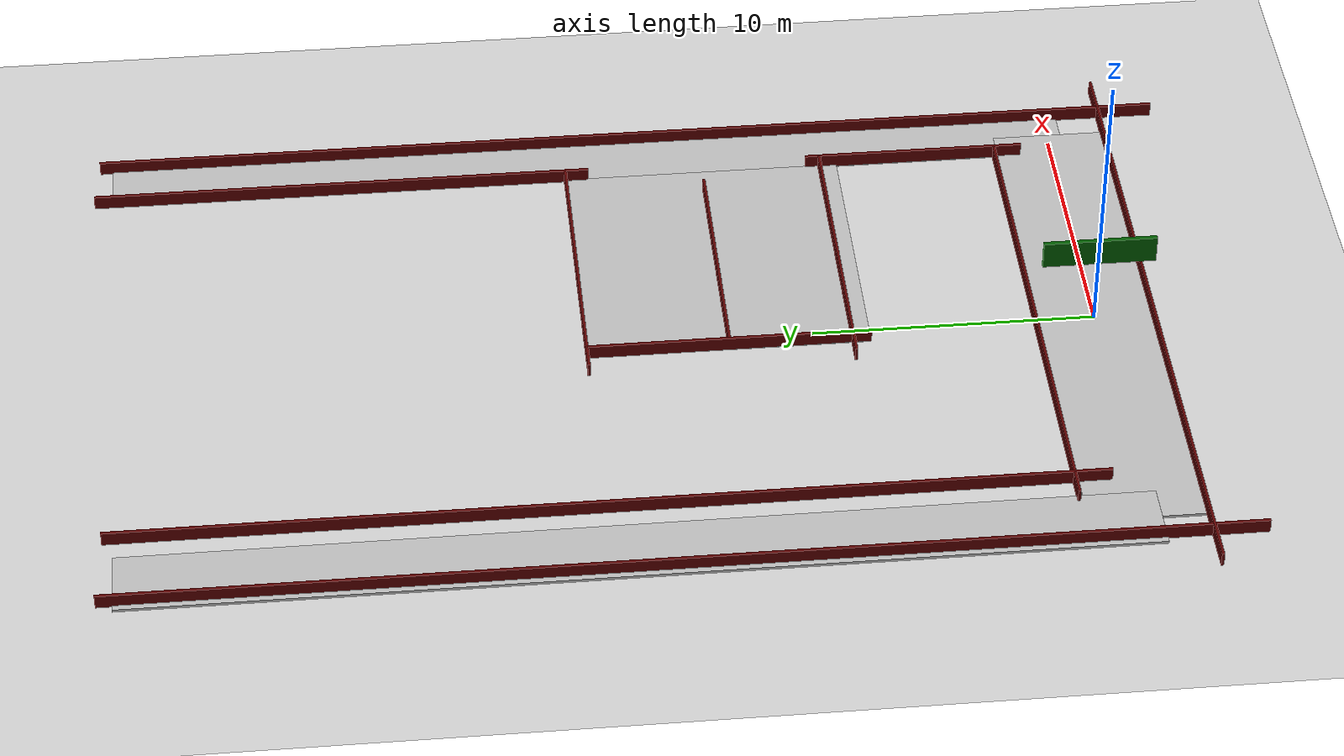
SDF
<sdf version="1.8">
 <world name="default">
  <model name="track">
   <static>true</static>
   <link name="seg1">
    <collision name="collision"><geometry><box><size>21 4 0.1</size></box></geometry></collision>
    <visual name="visual"><geometry><box><size>21 4 0.1</size></box></geometry></visual>
   </link>
   <link name="seg2">
    <pose>10.5 17 0 0 0 1.57</pose>
    <collision name="collision"><geometry><box><size>35 2 0.1</size></box></geometry></collision>
    <visual name="visual"><geometry><box><size>35 2 0.1</size></box></geometry></visual>
   </link>
   <link name="seg3">
    <pose>5 13 0 0 0 3.14</pose>
    <collision name="collision"><geometry><box><size>11 10 0.1</size></box></geometry></collision>
    <visual name="visual"><geometry><box><size>11 10 0.1</size></box></geometry></visual>
   </link>
   <link name="seg4">
    <pose>-10.5 17 0 0 0 -1.57</pose>
    <collision name="collision"><geometry><box><size>35 2.5 0.1</size></box></geometry></collision>
    <visual name="visual"><geometry><box><size>35 2.5 0.1</size></box></geometry></visual>
   </link>
  </model>
  <model name="fences_inner">
   <static>true</static>
   <link name="inner_s1">
    <pose>0 2.15 0.25 0 0 0</pose>
    <collision name="collision"><geometry><box><size>19 0.1 0.5</size></box></geometry></collision>
    <visual name="visual">
     <geometry><box><size>19 0.1 0.5</size></box></geometry>
     <material>
      <ambient>0.25 0 0 1</ambient>
      <diffuse>0.35 0 0 1</diffuse>
      <specular>0.05 0.05 0.05 1</specular>
     </material>
    </visual>
   </link>
   <link name="inner_s2">
    <pose>9.5 5.15 0.25 0 0 1.57</pose>
    <collision name="collision"><geometry><box><size>8 0.1 0.5</size></box></geometry></collision>
    <visual name="visual">
     <geometry><box><size>8 0.1 0.5</size></box></geometry>
     <material>
      <ambient>0.25 0 0 1</ambient>
      <diffuse>0.35 0 0 1</diffuse>
      <specular>0.05 0.05 0.05 1</specular>
     </material>
    </visual>
   </link>
   <link name="inner_s2_1">
    <pose>9.5 26.15 0.25 0 0 1.57</pose>
    <collision name="collision"><geometry><box><size>18 0.1 0.5</size></box></geometry></collision>
    <visual name="visual">
     <geometry><box><size>18 0.1 0.5</size></box></geometry>
     <material>
      <ambient>0.25 0 0 1</ambient>
      <diffuse>0.35 0 0 1</diffuse>
      <specular>0.05 0.05 0.05 1</specular>
     </material>
    </visual>
   </link>
   <link name="inner_s3">
    <pose>4 8.65 0.25 0 0 3.14</pose>
    <collision name="collision"><geometry><box><size>11 0.1 0.5</size></box></geometry></collision>
    <visual name="visual">
     <geometry><box><size>11 0.1 0.5</size></box></geometry>
     <material>
      <ambient>0.25 0 0 1</ambient>
      <diffuse>0.35 0 0 1</diffuse>
      <specular>0.05 0.05 0.05 1</specular>
     </material>
    </visual>
   </link>
   <link name="inner_s3_1">
    <pose>4 13 0.25 0 0 3.14</pose>
    <collision name="collision"><geometry><box><size>9 0.1 0.5</size></box></geometry></collision>
    <visual name="visual">
     <geometry><box><size>9 0.1 0.5</size></box></geometry>
     <material>
      <ambient>0.25 0 0 1</ambient>
      <diffuse>0.35 0 0 1</diffuse>
      <specular>0.05 0.05 0.05 1</specular>
     </material>
    </visual>
   </link>
   <link name="inner_s4">
    <pose>-8.5 17.85 0.25 0 0 -1.57</pose>
    <collision name="collision"><geometry><box><size>34 0.1 0.5</size></box></geometry></collision>
    <visual name="visual">
     <geometry><box><size>34 0.1 0.5</size></box></geometry>
     <material>
      <ambient>0.25 0 0 1</ambient>
      <diffuse>0.35 0 0 1</diffuse>
      <specular>0.05 0.05 0.05 1</specular>
     </material>
    </visual>
   </link>
   <link name="inner_s4_1">
    <pose>-0.5 13 0.25 0 0 -1.57</pose>
    <collision name="collision"><geometry><box><size>10 0.1 0.5</size></box></geometry></collision>
    <visual name="visual">
     <geometry><box><size>10 0.1 0.5</size></box></geometry>
     <material>
      <ambient>0.25 0 0 1</ambient>
      <diffuse>0.35 0 0 1</diffuse>
      <specular>0.05 0.05 0.05 1</specular>
     </material>
    </visual>
   </link>
  </model>
  <model name="fences_outer">
   <static>true</static>
   <link name="outer_s1">
    <pose>0 -2.05 0.25 0 0 0</pose>
    <collision name="collision"><geometry><box><size>26 0.1 0.5</size></box></geometry></collision>
    <visual name="visual">
     <geometry><box><size>26 0.1 0.5</size></box></geometry>
     <material>
      <ambient>0.25 0 0 1</ambient>
      <diffuse>0.35 0 0 1</diffuse>
      <specular>0.05 0.05 0.05 1</specular>
     </material>
    </visual>
   </link>
   <link name="outer_s2">
    <pose>11.5 15.45 0.25 0 0 1.57</pose>
    <collision name="collision"><geometry><box><size>39 0.1 0.5</size></box></geometry></collision>
    <visual name="visual">
     <geometry><box><size>39 0.1 0.5</size></box></geometry>
     <material>
      <ambient>0.25 0 0 1</ambient>
      <diffuse>0.35 0 0 1</diffuse>
      <specular>0.05 0.05 0.05 1</specular>
     </material>
    </visual>
   </link>
   <link name="outer_s3">
    <pose>4 18 0.25 0 0 3.14</pose>
    <collision name="collision"><geometry><box><size>11 0.1 0.5</size></box></geometry></collision>
    <visual name="visual">
     <geometry><box><size>11 0.1 0.5</size></box></geometry>
     <material>
      <ambient>0.25 0 0 1</ambient>
      <diffuse>0.35 0 0 1</diffuse>
      <specular>0.05 0.05 0.05 1</specular>
     </material>
    </visual>
   </link>
   <link name="outer_s4">
    <pose>-11.5 15.55 0.25 0 0 -1.57</pose>
    <collision name="collision"><geometry><box><size>39 0.1 0.5</size></box></geometry></collision>
    <visual name="visual">
     <geometry><box><size>39 0.1 0.5</size></box></geometry>
     <material>
      <ambient>0.25 0 0 1</ambient>
      <diffuse>0.35 0 0 1</diffuse>
      <specular>0.05 0.05 0.05 1</specular>
     </material>
    </visual>
   </link>
  </model>
  <model name="start_finish_board">
   <static>true</static>
   <link name="board">
    <pose>0 0 3 0 0 1.5708</pose>
    <collision name="collision"><geometry><box><size>4 0.15 1</size></box></geometry></collision>
    <visual name="board_visual">
     <geometry><box><size>4 0.15 1</size></box></geometry>
     <material>
      <ambient>0 0.25 0 1</ambient>
      <diffuse>0 0.35 0 1</diffuse>
      <specular>0.05 0.05 0.05 1</specular>
     </material>
    </visual>
   </link>
  </model>
  <plugin filename="gz-sim-physics-system" name="gz::sim::systems::Physics"/>
  <plugin filename="gz-sim-scene-broadcaster-system" name="gz::sim::systems::SceneBroadcaster"/>
  <plugin filename="gz-sim-user-commands-system" name="gz::sim::systems::UserCommands"/>
  <plugin filename="gz-sim-sensors-system" name="gz::sim::systems::Sensors">
   <render_engine>ogre2</render_engine>
  </plugin>
  <light name="sun" type="directional">
   <pose>0 0 10 0 0 0</pose>
   <diffuse>0.8 0.8 0.8 1</diffuse>
   <specular>0.2 0.2 0.2 1</specular>
   <attenuation>
    <range>1000</range>
    <constant>0.9</constant>
    <linear>0.01</linear>
    <quadratic>0.001</quadratic>
   </attenuation>
   <direction>-0.5 0.1 -0.9</direction>
  </light>
  <model name="ground_plane">
   <static>true</static>
   <link name="link">
    <collision name="collision">
     <geometry><plane><normal>0 0 1</normal><size>100 100</size></plane></geometry>
    </collision>
    <visual name="visual">
     <geometry><plane><normal>0 0 1</normal><size>100 100</size></plane></geometry>
     <material>
      <ambient>0.8 0.8 0.8 1</ambient>
      <diffuse>0.8 0.8 0.8 1</diffuse>
      <specular>0.8 0.8 0.8 1</specular>
     </material>
    </visual>
   </link>
  </model>
 </world>
</sdf>
